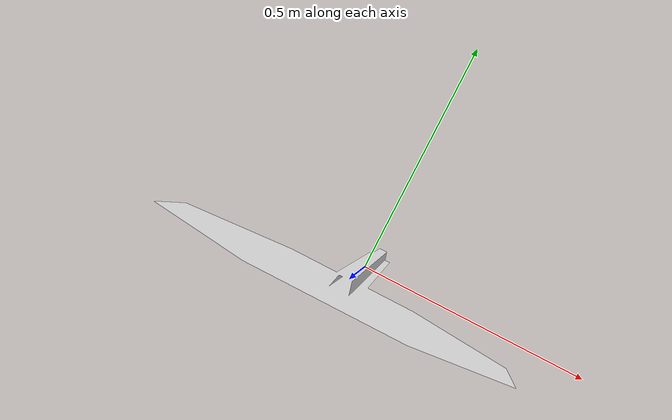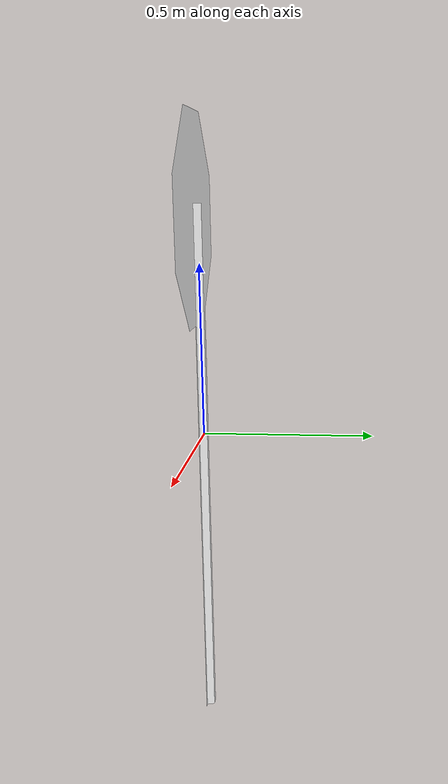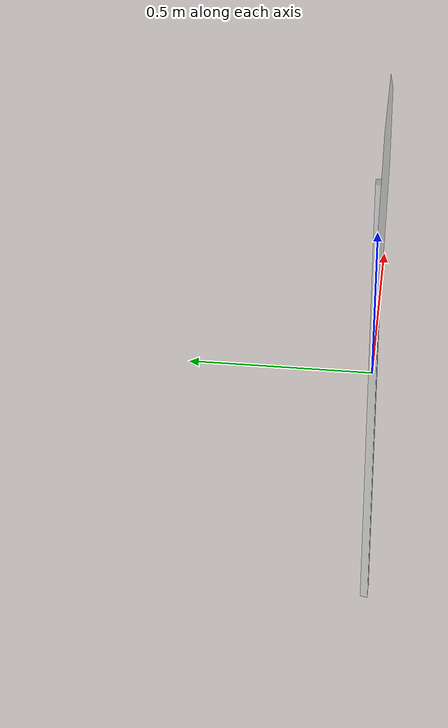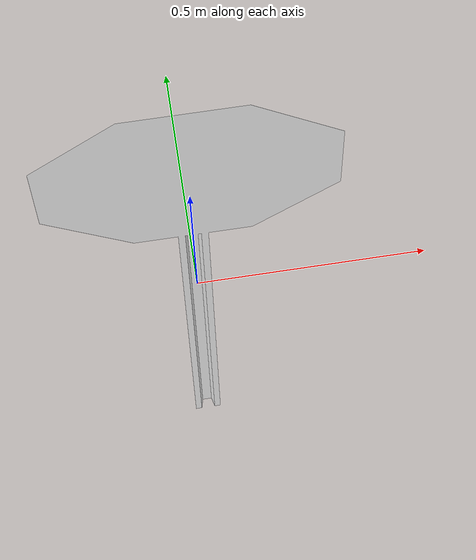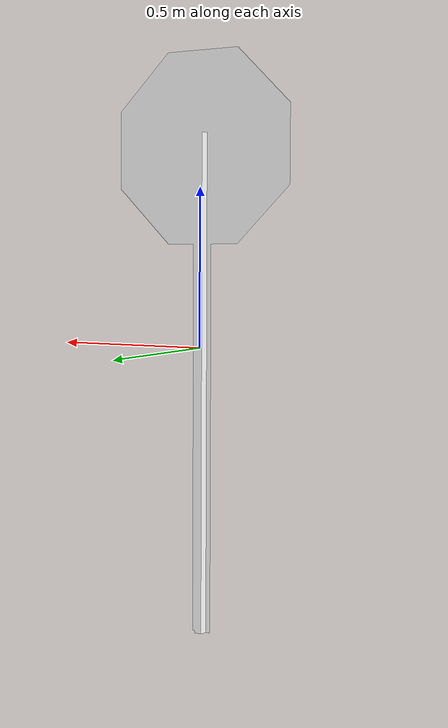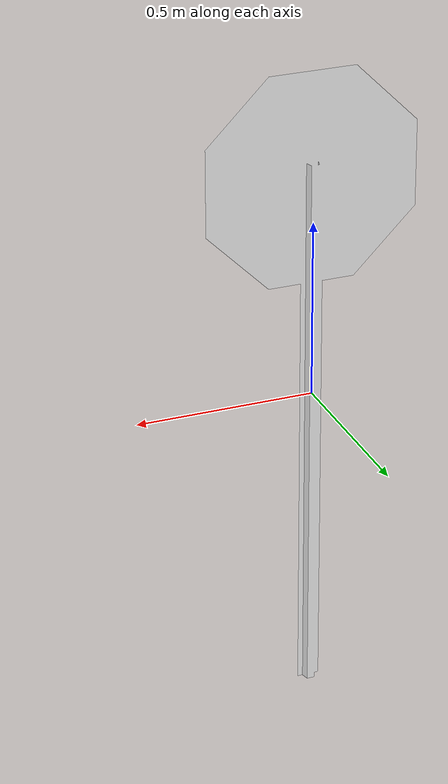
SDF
<?xml version="1.0" ?>
<sdf version="1.5">
 	<model name="Stop Sign">
    <link name="link">
      <collision name="collision">
	<pose> 0 0 -0.9 0 0 0 </pose>
        <geometry>
          <mesh>
            <uri>model://stop_sign/meshes/stop_sign.dae</uri>
          </mesh>
        </geometry>
      </collision>
      <visual name="visual">
        <pose> 0 0 -0.9 0 0 0 </pose>
        <geometry>
          <mesh>
            <uri>model://stop_sign/meshes/stop_sign.dae</uri>
          </mesh>
        </geometry>
        <material>
          <script>
            <uri>model://stop_sign/materials/scripts</uri>
            <uri>model://stop_sign/materials/textures</uri>
            <name>StopSign/Diffuse</name>
          </script>
        </material>
      </visual>
    </link>
  </model>
</sdf>
